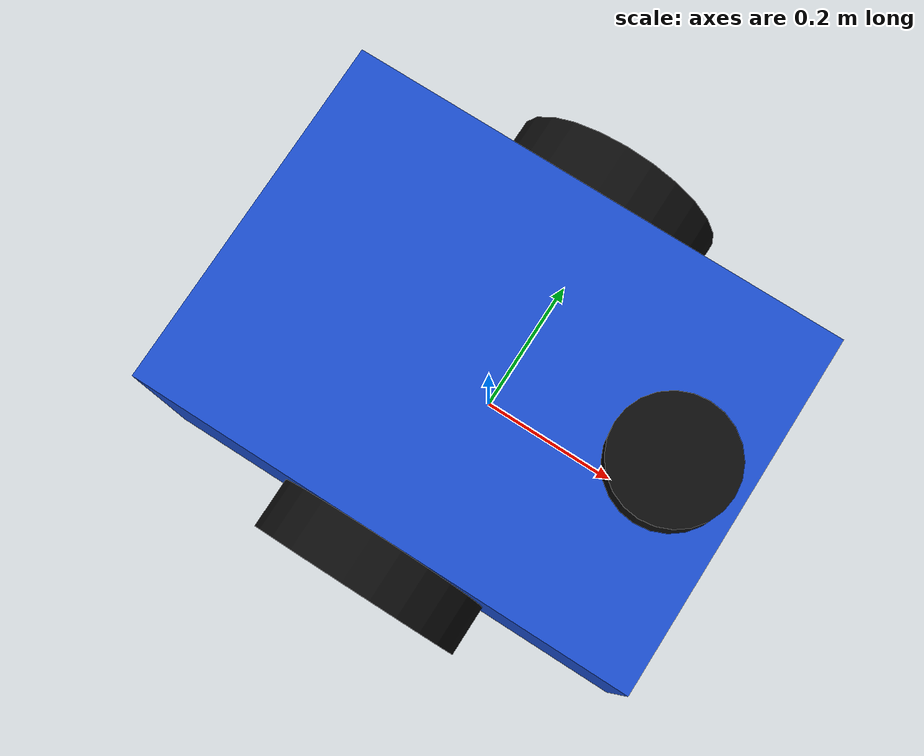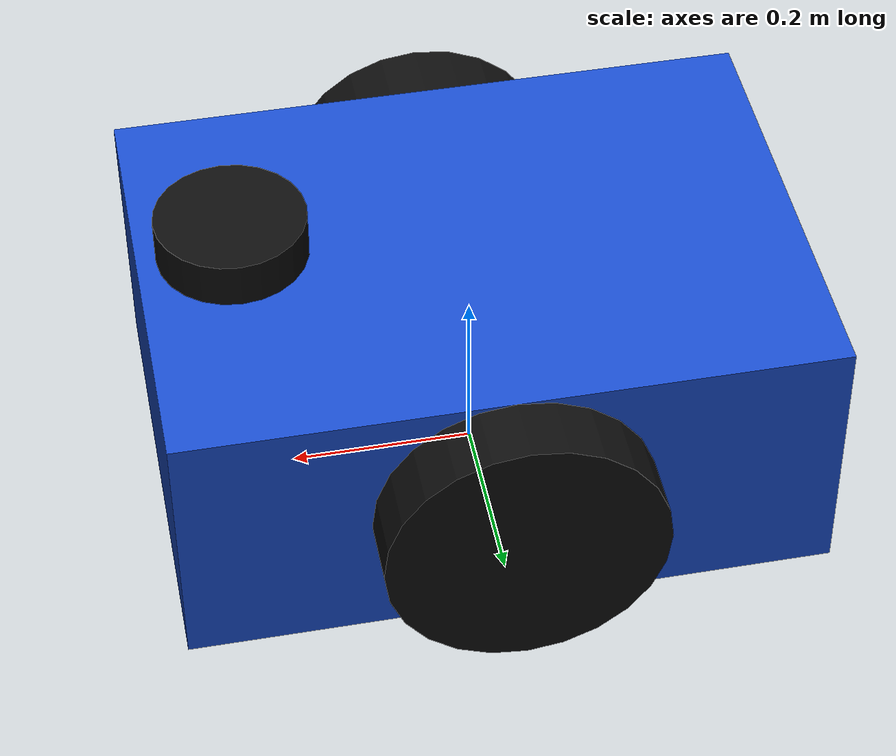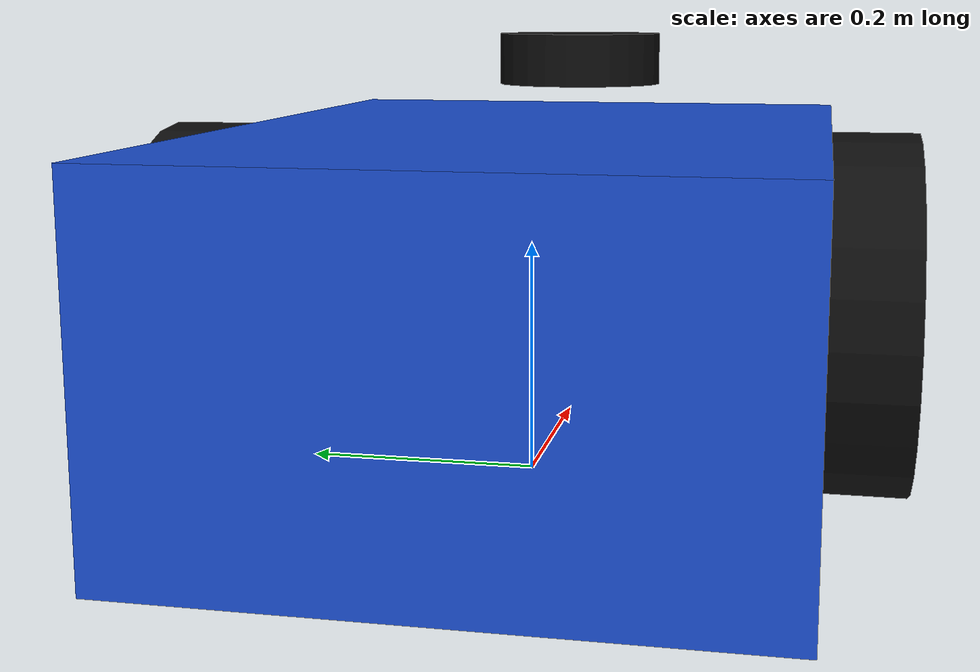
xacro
<?xml version="1.0"?>

<robot xmlns:xacro="http://www.ros.org/wiki/xacro" name="navigrid_robot">

  <!-- =========================
       Materials
       ========================= -->

  <material name="robot_blue">
    <color rgba="0.1 0.3 0.8 1.0"/>
  </material>

  <material name="wheel_black">
    <color rgba="0.05 0.05 0.05 1.0"/>
  </material>

  <!-- =========================
       Base footprint
       ========================= -->

  <link name="base_footprint"/>

  <!-- =========================
       Main robot body
       ========================= -->

  <link name="base_link">

    <visual>
      <origin xyz="0 0 0.15" rpy="0 0 0"/>
      <geometry>
        <box size="0.7 0.5 0.3"/>
      </geometry>
      <material name="robot_blue"/>
    </visual>

    <collision>
      <origin xyz="0 0 0.15" rpy="0 0 0"/>
      <geometry>
        <box size="0.7 0.5 0.3"/>
      </geometry>
    </collision>

    <inertial>
      <origin xyz="0 0 0.15"/>
      <mass value="10.0"/>
      <inertia
        ixx="0.5"
        ixy="0.0"
        ixz="0.0"
        iyy="0.8"
        iyz="0.0"
        izz="1.0"/>
    </inertial>

  </link>

  <joint name="base_footprint_joint"
         type="fixed">

    <parent link="base_footprint"/>
    <child link="base_link"/>

    <origin xyz="0 0 0" rpy="0 0 0"/>

  </joint>

  <!-- =========================
       Left wheel
       ========================= -->

  <link name="left_wheel">

    <visual>
      <origin xyz="0 0 0" rpy="1.5708 0 0"/>
      <geometry>
        <cylinder radius="0.15" length="0.08"/>
      </geometry>
      <material name="wheel_black"/>
    </visual>

    <collision>
      <origin xyz="0 0 0" rpy="1.5708 0 0"/>
      <geometry>
        <cylinder radius="0.15" length="0.08"/>
      </geometry>
    </collision>

    <inertial>
      <mass value="1.0"/>
      <inertia
        ixx="0.01"
        ixy="0.0"
        ixz="0.0"
        iyy="0.01"
        iyz="0.0"
        izz="0.01"/>
    </inertial>

  </link>

  <joint name="left_wheel_joint"
         type="continuous">

    <parent link="base_link"/>
    <child link="left_wheel"/>

    <origin xyz="0 0.28 0.15"
            rpy="0 0 0"/>

    <axis xyz="0 1 0"/>

  </joint>

  <!-- =========================
       Right wheel
       ========================= -->

  <link name="right_wheel">

    <visual>
      <origin xyz="0 0 0" rpy="1.5708 0 0"/>
      <geometry>
        <cylinder radius="0.15" length="0.08"/>
      </geometry>
      <material name="wheel_black"/>
    </visual>

    <collision>
      <origin xyz="0 0 0" rpy="1.5708 0 0"/>
      <geometry>
        <cylinder radius="0.15" length="0.08"/>
      </geometry>
    </collision>

    <inertial>
      <mass value="1.0"/>
      <inertia
        ixx="0.01"
        ixy="0.0"
        ixz="0.0"
        iyy="0.01"
        iyz="0.0"
        izz="0.01"/>
    </inertial>

  </link>

  <joint name="right_wheel_joint"
         type="continuous">

    <parent link="base_link"/>
    <child link="right_wheel"/>

    <origin xyz="0 -0.28 0.15"
            rpy="0 0 0"/>

    <axis xyz="0 1 0"/>

  </joint>

  <!-- =========================
       LiDAR
       ========================= -->

  <link name="lidar_link">

    <visual>
      <origin xyz="0 0 0" rpy="0 0 0"/>
      <geometry>
        <cylinder radius="0.08" length="0.05"/>
      </geometry>
      <material name="wheel_black"/>
    </visual>

    <collision>
      <origin xyz="0 0 0" rpy="0 0 0"/>
      <geometry>
        <cylinder radius="0.08" length="0.05"/>
      </geometry>
    </collision>

  </link>

  <joint name="lidar_joint"
         type="fixed">

    <parent link="base_link"/>
    <child link="lidar_link"/>

    <origin xyz="0.25 0 0.35"
            rpy="0 0 0"/>

  </joint>

  <!-- =========================
       IMU
       ========================= -->

  <link name="imu_link"/>

  <joint name="imu_joint"
         type="fixed">

    <parent link="base_link"/>
    <child link="imu_link"/>

    <origin xyz="0 0 0.25"
            rpy="0 0 0"/>

  </joint>

  <!-- =========================
       Gazebo differential drive
       ========================= -->

  <gazebo>

    <plugin
      filename="gz-sim-diff-drive-system"
      name="gz::sim::systems::DiffDrive">

      <left_joint>left_wheel_joint</left_joint>
      <right_joint>right_wheel_joint</right_joint>

      <wheel_separation>0.56</wheel_separation>
      <wheel_radius>0.15</wheel_radius>

      <odom_publish_frequency>30</odom_publish_frequency>

      <topic>/cmd_vel</topic>
      <odom_topic>/odom</odom_topic>

      <frame_id>odom</frame_id>
      <child_frame_id>base_footprint</child_frame_id>

    </plugin>

  </gazebo>

  <!-- =========================
       LiDAR sensor
       ========================= -->

  <gazebo reference="lidar_link">

    <sensor name="lidar"
            type="lidar">

            <always_on>true</always_on>
      <visualize>true</visualize>
<topic>/scan</topic>

      <update_rate>10</update_rate>

      <lidar>

        sohini340@nebula:~/navigrid_ws$ gedit ~/navigrid_ws/src/navigrid_description/urdf/navigrid_robot.urdf.xacro
Command 'gedit' not found, but can be installed with:
sudo snap install gedit  # version 48.1, or
sudo apt  install gedit  # version 46.1-3
See 'snap info gedit' for additional versions.
sohini340@nebula:~/navigrid_ws$
<scan>

          <horizontal>
            <samples>720</samples>
            <resolution>1</resolution>
            <min_angle>-3.14159</min_angle>
            <max_angle>3.14159</max_angle>
          </horizontal>

        </scan>

        <range>
          <min>0.12</min>
          <max>20.0</max>
          <resolution>0.01</resolution>
        </range>

      </lidar>

    </sensor>

  </gazebo>

  <!-- =========================
       IMU sensor
       ========================= -->

  <gazebo reference="imu_link">

    <sensor name="imu"
            type="imu">

      <topic>/imu</topic>

      <update_rate>50</update_rate>

    </sensor>

  </gazebo>

</robot>
